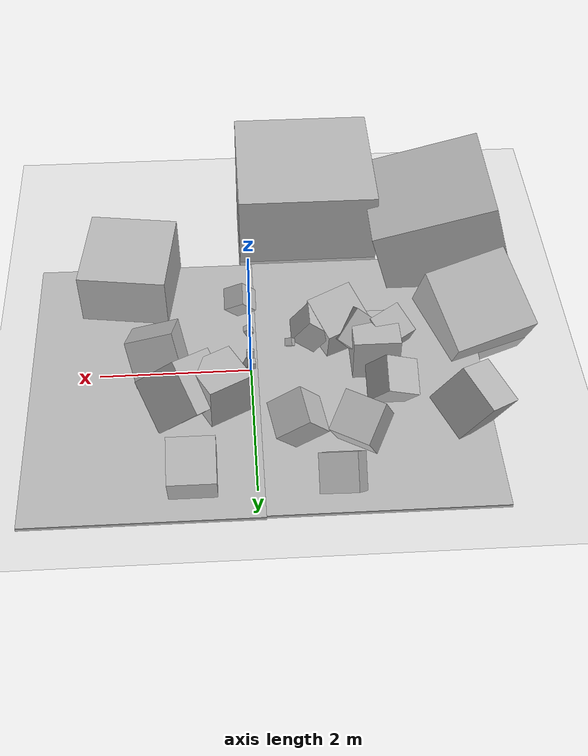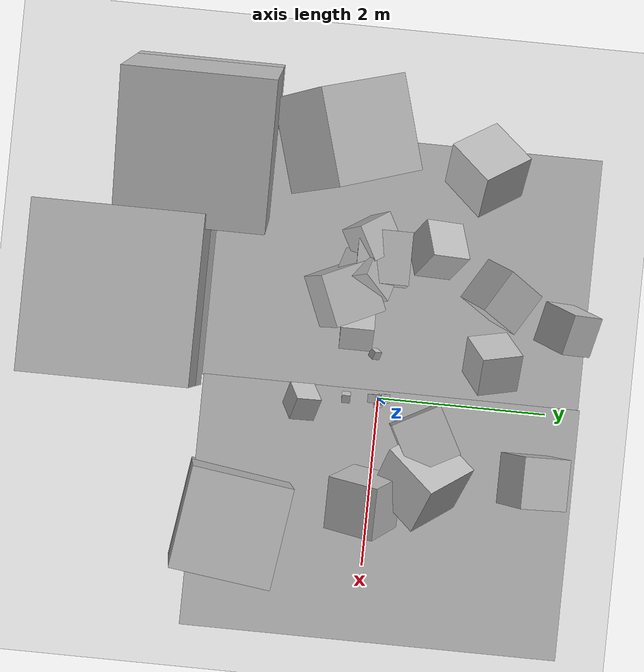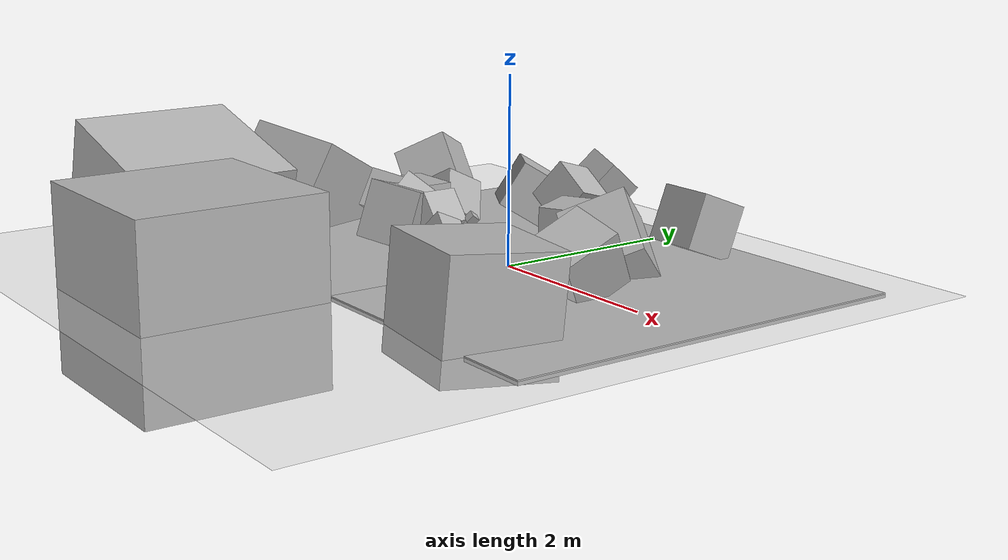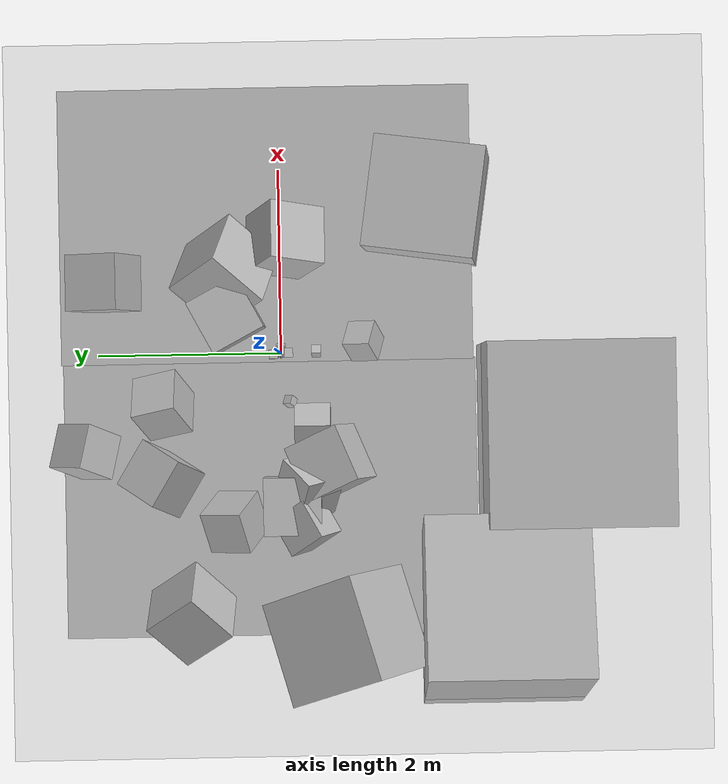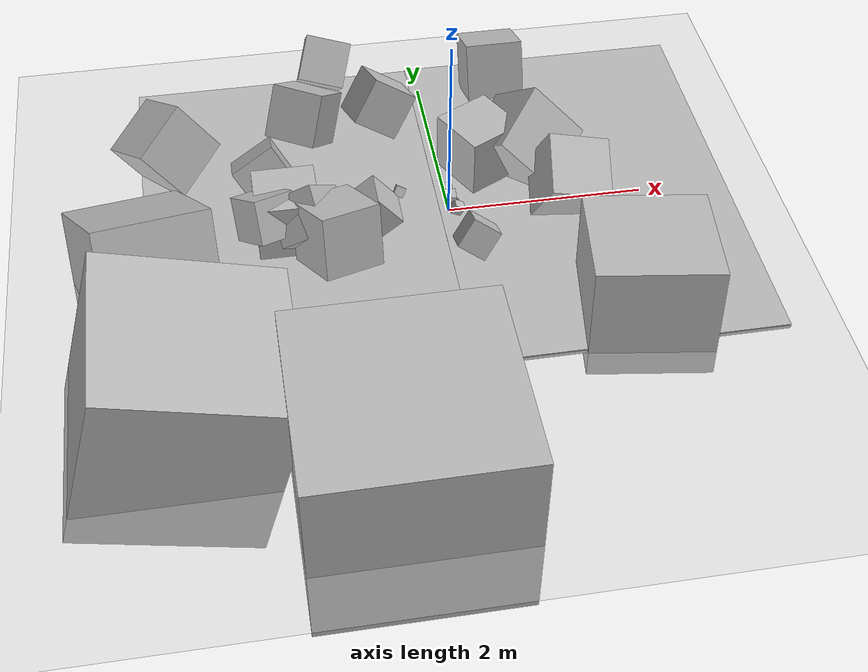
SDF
<sdf version="1.5">
 <world name="default">
  <model name="ground_plane">
   <static>1</static>
   <link name="link">
    <collision name="collision">
     <geometry><plane><normal>0 0 1</normal><size>100 100</size></plane></geometry>
     <surface><friction><ode><mu>100</mu><mu2>50</mu2></ode></friction></surface>
    </collision>
    <visual name="visual">
     <cast_shadows>0</cast_shadows>
     <geometry><plane><normal>0 0 1</normal><size>100 100</size></plane></geometry>
     <material>
      <script><uri>file://media/materials/scripts/gazebo.material</uri><name>Gazebo/Grey</name></script>
     </material>
    </visual>
    <velocity_decay><linear>0</linear><angular>0</angular></velocity_decay>
   </link>
  </model>
  <light name="sun" type="directional">
   <pose>0 0 10 0 -0 0</pose>
   <diffuse>0.8 0.8 0.8 1</diffuse>
   <specular>0.2 0.2 0.2 1</specular>
   <attenuation>
    <range>1000</range>
    <constant>0.9</constant>
    <linear>0.01</linear>
    <quadratic>0.001</quadratic>
   </attenuation>
   <direction>-0.5 0.1 -0.9</direction>
  </light>
  <physics type="ode">
   <max_step_size>0.001</max_step_size>
   <real_time_factor>1</real_time_factor>
   <real_time_update_rate>1000</real_time_update_rate>
   <gravity>0 0 -9.8</gravity>
   <magnetic_field>5.5645e-06 2.28758e-05 -4.23884e-05</magnetic_field>
  </physics>
  <scene><ambient>0.4 0.4 0.4 1</ambient><background>0.7 0.7 0.7 1</background><shadows>1</shadows></scene>
  <spherical_coordinates>
   <surface_model>EARTH_WGS84</surface_model>
   <latitude_deg>0</latitude_deg>
   <longitude_deg>0</longitude_deg>
   <elevation>0</elevation>
   <heading_deg>0</heading_deg>
  </spherical_coordinates>
  <model name="rpg_streets">
   <static>1</static>
   <link name="body">
    <visual name="visual">
     <geometry><box><size>3 4.5 0.05</size></box></geometry>
     <material><script><uri>model://rpg_streets</uri><name>RPGStreets/Diffuse</name></script></material>
    </visual>
    <velocity_decay><linear>0</linear><angular>0</angular></velocity_decay>
   </link>
   <pose>1.40843 0.157324 -0.02 0 -0 0</pose>
  </model>
  <model name="box_1">
   <static>1</static>
   <link name="body">
    <visual name="visual">
     <geometry><box><size>1.97046 1.97046 1.97046</size></box></geometry>
     <material><script><uri>model://box_1</uri><name>box1/Diffuse</name></script></material>
    </visual>
    <velocity_decay><linear>0</linear><angular>0</angular></velocity_decay>
   </link>
   <pose>-0.916401 -3.1636 0.09068 0 -0 0</pose>
  </model>
  <model name="box_10">
   <static>1</static>
   <link name="body">
    <visual name="visual">
     <geometry><box><size>0.1 0.1 0.1</size></box></geometry>
     <material><script><uri>model://box_10</uri><name>box10/Diffuse</name></script></material>
    </visual>
    <velocity_decay><linear>0</linear><angular>0</angular></velocity_decay>
   </link>
   <pose>0.023236 -0.005043 0.150434 6.9803e-18 -0.546637 0.523897</pose>
  </model>
  <model name="box_11">
   <static>1</static>
   <link name="body">
    <visual name="visual">
     <geometry><box><size>0.1 0.1 0.1</size></box></geometry>
     <material><script><uri>model://box_11</uri><name>box11/Diffuse</name></script></material>
    </visual>
    <velocity_decay><linear>0</linear><angular>0</angular></velocity_decay>
   </link>
   <pose>-0.010368 0.078316 0.224228 0 -0 0</pose>
  </model>
  <model name="box_12">
   <static>1</static>
   <link name="body">
    <visual name="visual">
     <geometry><box><size>1.14129 1.14129 1.14129</size></box></geometry>
     <material><script><uri>model://box_12</uri><name>box12/Diffuse</name></script></material>
    </visual>
    <velocity_decay><linear>0</linear><angular>0</angular></velocity_decay>
   </link>
   <pose>-3.05981 -0.671756 0.297294 -0.503554 0.127902 0.28698</pose>
  </model>
  <model name="box_13">
   <static>1</static>
   <link name="body">
    <visual name="visual">
     <geometry><box><size>0.633761 0.633761 0.633761</size></box></geometry>
     <material><script><uri>model://box_13</uri><name>box13/Diffuse</name></script></material>
    </visual>
    <velocity_decay><linear>0</linear><angular>0</angular></velocity_decay>
   </link>
   <pose>1.21883 -0.069539 0.334168 0.484352 0.24326 2.82764e-19</pose>
  </model>
  <model name="box_14">
   <static>1</static>
   <link name="body">
    <visual name="visual">
     <geometry><box><size>0.1 0.1 0.1</size></box></geometry>
     <material><script><uri>model://box_14</uri><name>box14/Diffuse</name></script></material>
    </visual>
    <velocity_decay><linear>0</linear><angular>0</angular></velocity_decay>
   </link>
   <pose>0.003025 -0.064363 0.259458 0.435337 -0 0</pose>
  </model>
  <model name="box_15">
   <static>1</static>
   <link name="body">
    <visual name="visual">
     <geometry><box><size>1.75596 1.75596 1.75596</size></box></geometry>
     <material><script><uri>model://box_15</uri><name>box15/Diffuse</name></script></material>
    </visual>
    <velocity_decay><linear>0</linear><angular>0</angular></velocity_decay>
   </link>
   <pose>-2.8216 -2.37615 0.28776 0 0.270226 0</pose>
  </model>
  <model name="box_16">
   <static>1</static>
   <link name="body">
    <visual name="visual">
     <geometry><box><size>0.1 0.1 0.1</size></box></geometry>
     <material><script><uri>model://box_16</uri><name>box16/Diffuse</name></script></material>
    </visual>
    <velocity_decay><linear>0</linear><angular>0</angular></velocity_decay>
   </link>
   <pose>0.056508 0.005161 0 0 -0 0</pose>
  </model>
  <model name="box_17">
   <static>1</static>
   <link name="body">
    <visual name="visual">
     <geometry><box><size>0.550205 0.550205 0.550205</size></box></geometry>
     <material><script><uri>model://box_17</uri><name>box17/Diffuse</name></script></material>
    </visual>
    <velocity_decay><linear>0</linear><angular>0</angular></velocity_decay>
   </link>
   <pose>-1.33022 1.30328 0.395167 -0.54914 -3.59142e-18 -0.541252</pose>
  </model>
  <model name="box_18">
   <static>1</static>
   <link name="body">
    <visual name="visual">
     <geometry><box><size>1.1928 1.1928 1.1928</size></box></geometry>
     <material><script><uri>model://box_18</uri><name>box18/Diffuse</name></script></material>
    </visual>
    <velocity_decay><linear>0</linear><angular>0</angular></velocity_decay>
   </link>
   <pose>1.61106 -1.60095 0.266092 -0.09012 1.73684e-18 -0.142186</pose>
  </model>
  <model name="box_19">
   <static>1</static>
   <link name="body">
    <visual name="visual">
     <geometry><box><size>0.601136 0.601136 0.601136</size></box></geometry>
     <material><script><uri>model://box_19</uri><name>box19/Diffuse</name></script></material>
    </visual>
    <velocity_decay><linear>0</linear><angular>0</angular></velocity_decay>
   </link>
   <pose>0.784138 1.89242 0.358218 -0.373331 0 0</pose>
  </model>
  <model name="box_9">
   <static>1</static>
   <link name="body">
    <visual name="visual">
     <geometry><box><size>0.482862 0.482862 0.482862</size></box></geometry>
     <material><script><uri>model://box_9</uri><name>box9/Diffuse</name></script></material>
    </visual>
    <velocity_decay><linear>0</linear><angular>0</angular></velocity_decay>
   </link>
   <pose>-1.81292 0.529178 0.285783 -0.78019 0.893522 -0.656937</pose>
  </model>
  <model name="box_6">
   <static>1</static>
   <link name="body">
    <visual name="visual">
     <geometry><box><size>0.385821 0.385821 0.385821</size></box></geometry>
     <material><script><uri>model://box_6</uri><name>box6/Diffuse</name></script></material>
    </visual>
    <velocity_decay><linear>0</linear><angular>0</angular></velocity_decay>
   </link>
   <pose>-0.816172 -0.335964 0.433275 0 0.890985 0</pose>
  </model>
  <model name="box_5">
   <static>1</static>
   <link name="body">
    <visual name="visual">
     <geometry><box><size>0.728003 0.728003 0.728003</size></box></geometry>
     <material><script><uri>model://box_5</uri><name>box5/Diffuse</name></script></material>
    </visual>
    <velocity_decay><linear>0</linear><angular>0</angular></velocity_decay>
   </link>
   <pose>0.883092 0.595873 0.32105 0.853346 -0.403839 0.850645</pose>
  </model>
  <model name="box_8">
   <static>1</static>
   <link name="body">
    <visual name="visual">
     <geometry><box><size>0.619471 0.619471 0.619471</size></box></geometry>
     <material><script><uri>model://box_8</uri><name>box8/Diffuse</name></script></material>
    </visual>
    <velocity_decay><linear>0</linear><angular>0</angular></velocity_decay>
   </link>
   <pose>-1.64795 -0.108925 0.313571 0 -0 0</pose>
  </model>
  <model name="box_19_0">
   <static>1</static>
   <link name="body">
    <visual name="visual">
     <geometry><box><size>0.306533 0.306533 0.306533</size></box></geometry>
     <material><script><uri>model://box_19</uri><name>box19/Diffuse</name></script></material>
    </visual>
    <velocity_decay><linear>0</linear><angular>0</angular></velocity_decay>
   </link>
   <pose>0.109493 -0.892875 0.465149 -0.500427 0.557927 -0.281816</pose>
  </model>
  <model name="box_12_0">
   <static>1</static>
   <link name="body">
    <visual name="visual">
     <geometry><box><size>0.494957 0.494957 0.494957</size></box></geometry>
     <material><script><uri>model://box_12</uri><name>box12/Diffuse</name></script></material>
    </visual>
    <velocity_decay><linear>0</linear><angular>0</angular></velocity_decay>
   </link>
   <pose>-0.540362 1.26492 0.481925 -0.352581 0.593079 -1.13425e-17</pose>
  </model>
  <model name="box_18_0">
   <static>1</static>
   <link name="body">
    <visual name="visual">
     <geometry><box><size>0.649388 0.649388 0.649388</size></box></geometry>
     <material><script><uri>model://box_18</uri><name>box18/Diffuse</name></script></material>
    </visual>
    <velocity_decay><linear>0</linear><angular>0</angular></velocity_decay>
   </link>
   <pose>-2.78566 0.999959 0.387909 0.493958 -0.395252 -0.994141</pose>
  </model>
  <model name="box_2">
   <static>1</static>
   <link name="body">
    <visual name="visual">
     <geometry><box><size>0.1 0.1 0.1</size></box></geometry>
     <material><script><uri>model://box_2</uri><name>box2/Diffuse</name></script></material>
    </visual>
    <velocity_decay><linear>0</linear><angular>0</angular></velocity_decay>
   </link>
   <pose>-0.521905 -0.098341 0.41608 -1.0094 -0.795849 0.849009</pose>
  </model>
  <model name="box_20">
   <static>1</static>
   <link name="body">
    <visual name="visual">
     <geometry><box><size>0.486917 0.486917 0.486917</size></box></geometry>
     <material><script><uri>model://box_20</uri><name>box20/Diffuse</name></script></material>
    </visual>
    <velocity_decay><linear>0</linear><angular>0</angular></velocity_decay>
   </link>
   <pose>-1.4384 -0.283072 0.37942 0.803522 -0.573436 -0.301979</pose>
  </model>
  <model name="box_3">
   <static>1</static>
   <link name="body">
    <visual name="visual">
     <geometry><box><size>0.481658 0.481658 0.481658</size></box></geometry>
     <material><script><uri>model://box_3</uri><name>box3/Diffuse</name></script></material>
    </visual>
    <velocity_decay><linear>0</linear><angular>0</angular></velocity_decay>
   </link>
   <pose>-1.02489 2.10965 0.428981 -0.726807 0.229726 -0.199776</pose>
  </model>
  <model name="box_4">
   <static>1</static>
   <link name="body">
    <visual name="visual">
     <geometry><box><size>0.611969 0.611969 0.611969</size></box></geometry>
     <material><script><uri>model://box_4</uri><name>box4/Diffuse</name></script></material>
    </visual>
    <velocity_decay><linear>0</linear><angular>0</angular></velocity_decay>
   </link>
   <pose>0.410104 0.576291 0.352437 0 -0 0.488794</pose>
  </model>
  <model name="box_4_0">
   <static>1</static>
   <link name="body">
    <visual name="visual">
     <geometry><box><size>0.629295 0.629295 0.629295</size></box></geometry>
     <material><script><uri>model://box_4</uri><name>box4/Diffuse</name></script></material>
    </visual>
    <velocity_decay><linear>0</linear><angular>0</angular></velocity_decay>
   </link>
   <pose>-1.19253 -0.520581 0.357833 -0.303395 0.131338 0.396203</pose>
  </model>
  <model name="box_12_1">
   <static>1</static>
   <link name="body">
    <visual name="visual">
     <geometry><box><size>0.1 0.1 0.1</size></box></geometry>
     <material><script><uri>model://box_12</uri><name>box12/Diffuse</name></script></material>
    </visual>
    <velocity_decay><linear>0</linear><angular>0</angular></velocity_decay>
   </link>
   <pose>0.01407 -0.3867 0.381933 0 0.483425 0</pose>
  </model>
  <model name="box_15_0">
   <static>1</static>
   <link name="body">
    <visual name="visual">
     <geometry><box><size>0.43737 0.43737 0.43737</size></box></geometry>
     <material><script><uri>model://box_15</uri><name>box15/Diffuse</name></script></material>
    </visual>
    <velocity_decay><linear>0</linear><angular>0</angular></velocity_decay>
   </link>
   <pose>-1.86478 -0.254461 0.430196 0.201258 0.461643 2.16633</pose>
  </model>
  <model name="rpg_streets2">
   <static>1</static>
   <link name="body">
    <visual name="visual">
     <geometry><box><size>3 4.5 0.05</size></box></geometry>
     <material><script><uri>model://rpg_streets2</uri><name>RPGStreets2/Diffuse</name></script></material>
    </visual>
    <velocity_decay><linear>0</linear><angular>0</angular></velocity_decay>
   </link>
   <pose>-1.57605 0.137784 -0.022014 0 -0 0</pose>
  </model>
 </world>
</sdf>
